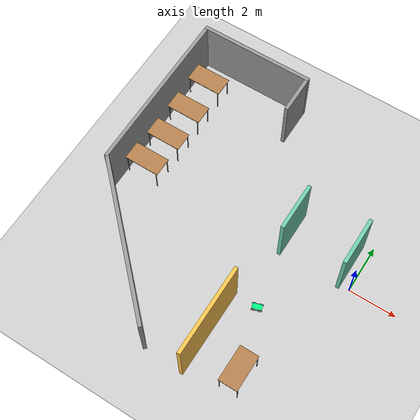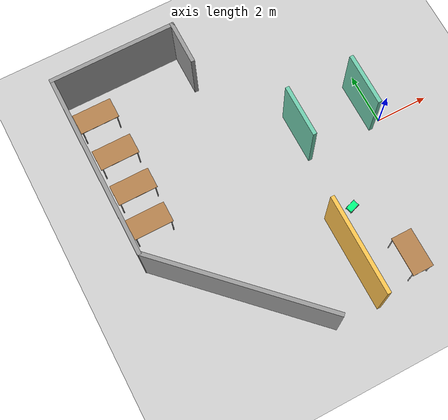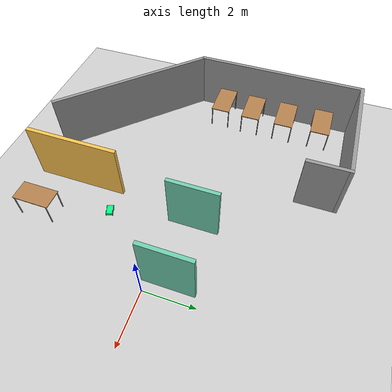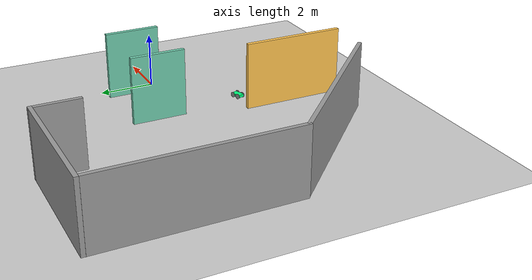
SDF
<sdf version="1.6">
 <world name="default">
  <model name="ground_plane">
   <static>1</static>
   <link name="link">
    <collision name="collision">
     <geometry><plane><normal>0 0 1</normal><size>100 100</size></plane></geometry>
     <surface><friction><ode><mu>100</mu><mu2>50</mu2></ode></friction></surface>
    </collision>
    <visual name="visual">
     <cast_shadows>0</cast_shadows>
     <geometry><plane><normal>0 0 1</normal><size>100 100</size></plane></geometry>
     <material>
      <script><uri>file://media/materials/scripts/gazebo.material</uri><name>Gazebo/Grey</name></script>
     </material>
    </visual>
   </link>
  </model>
  <model name="table">
   <static>1</static>
   <link name="link">
    <collision name="surface">
     <pose>0 0 1 0 -0 0</pose>
     <geometry><box><size>1.5 0.8 0.03</size></box></geometry>
     <surface><friction><ode><mu>0.6</mu><mu2>0.6</mu2></ode></friction></surface>
    </collision>
    <visual name="visual1">
     <pose>0 0 1 0 -0 0</pose>
     <geometry><box><size>1.5 0.8 0.03</size></box></geometry>
     <material>
      <script><uri>file://media/materials/scripts/gazebo.material</uri><name>Gazebo/Wood</name></script>
     </material>
    </visual>
    <collision name="front_left_leg">
     <pose>0.68 0.38 0.5 0 -0 0</pose>
     <geometry><cylinder><radius>0.02</radius><length>1</length></cylinder></geometry>
    </collision>
    <visual name="front_left_leg">
     <pose>0.68 0.38 0.5 0 -0 0</pose>
     <geometry><cylinder><radius>0.02</radius><length>1</length></cylinder></geometry>
     <material>
      <script><uri>file://media/materials/scripts/gazebo.material</uri><name>Gazebo/Grey</name></script>
     </material>
    </visual>
    <collision name="front_right_leg">
     <pose>0.68 -0.38 0.5 0 -0 0</pose>
     <geometry><cylinder><radius>0.02</radius><length>1</length></cylinder></geometry>
    </collision>
    <visual name="front_right_leg">
     <pose>0.68 -0.38 0.5 0 -0 0</pose>
     <geometry><cylinder><radius>0.02</radius><length>1</length></cylinder></geometry>
     <material>
      <script><uri>file://media/materials/scripts/gazebo.material</uri><name>Gazebo/Grey</name></script>
     </material>
    </visual>
    <collision name="back_right_leg">
     <pose>-0.68 -0.38 0.5 0 -0 0</pose>
     <geometry><cylinder><radius>0.02</radius><length>1</length></cylinder></geometry>
    </collision>
    <visual name="back_right_leg">
     <pose>-0.68 -0.38 0.5 0 -0 0</pose>
     <geometry><cylinder><radius>0.02</radius><length>1</length></cylinder></geometry>
     <material>
      <script><uri>file://media/materials/scripts/gazebo.material</uri><name>Gazebo/Grey</name></script>
     </material>
    </visual>
    <collision name="back_left_leg">
     <pose>-0.68 0.38 0.5 0 -0 0</pose>
     <geometry><cylinder><radius>0.02</radius><length>1</length></cylinder></geometry>
    </collision>
    <visual name="back_left_leg">
     <pose>-0.68 0.38 0.5 0 -0 0</pose>
     <geometry><cylinder><radius>0.02</radius><length>1</length></cylinder></geometry>
     <material>
      <script><uri>file://media/materials/scripts/gazebo.material</uri><name>Gazebo/Grey</name></script>
     </material>
    </visual>
   </link>
   <pose>-9.31337 4.66156 0 0 -0 0</pose>
  </model>
  <model name="table_clone">
   <static>1</static>
   <link name="link">
    <collision name="surface">
     <pose>0 0 1 0 -0 0</pose>
     <geometry><box><size>1.5 0.8 0.03</size></box></geometry>
     <surface><friction><ode><mu>0.6</mu><mu2>0.6</mu2></ode></friction></surface>
    </collision>
    <visual name="visual1">
     <pose>0 0 1 0 -0 0</pose>
     <geometry><box><size>1.5 0.8 0.03</size></box></geometry>
     <material>
      <script><uri>file://media/materials/scripts/gazebo.material</uri><name>Gazebo/Wood</name></script>
     </material>
    </visual>
    <collision name="front_left_leg">
     <pose>0.68 0.38 0.5 0 -0 0</pose>
     <geometry><cylinder><radius>0.02</radius><length>1</length></cylinder></geometry>
    </collision>
    <visual name="front_left_leg">
     <pose>0.68 0.38 0.5 0 -0 0</pose>
     <geometry><cylinder><radius>0.02</radius><length>1</length></cylinder></geometry>
     <material>
      <script><uri>file://media/materials/scripts/gazebo.material</uri><name>Gazebo/Grey</name></script>
     </material>
    </visual>
    <collision name="front_right_leg">
     <pose>0.68 -0.38 0.5 0 -0 0</pose>
     <geometry><cylinder><radius>0.02</radius><length>1</length></cylinder></geometry>
    </collision>
    <visual name="front_right_leg">
     <pose>0.68 -0.38 0.5 0 -0 0</pose>
     <geometry><cylinder><radius>0.02</radius><length>1</length></cylinder></geometry>
     <material>
      <script><uri>file://media/materials/scripts/gazebo.material</uri><name>Gazebo/Grey</name></script>
     </material>
    </visual>
    <collision name="back_right_leg">
     <pose>-0.68 -0.38 0.5 0 -0 0</pose>
     <geometry><cylinder><radius>0.02</radius><length>1</length></cylinder></geometry>
    </collision>
    <visual name="back_right_leg">
     <pose>-0.68 -0.38 0.5 0 -0 0</pose>
     <geometry><cylinder><radius>0.02</radius><length>1</length></cylinder></geometry>
     <material>
      <script><uri>file://media/materials/scripts/gazebo.material</uri><name>Gazebo/Grey</name></script>
     </material>
    </visual>
    <collision name="back_left_leg">
     <pose>-0.68 0.38 0.5 0 -0 0</pose>
     <geometry><cylinder><radius>0.02</radius><length>1</length></cylinder></geometry>
    </collision>
    <visual name="back_left_leg">
     <pose>-0.68 0.38 0.5 0 -0 0</pose>
     <geometry><cylinder><radius>0.02</radius><length>1</length></cylinder></geometry>
     <material>
      <script><uri>file://media/materials/scripts/gazebo.material</uri><name>Gazebo/Grey</name></script>
     </material>
    </visual>
   </link>
   <pose>-9.2685 3.06963 0 0 -0 0</pose>
  </model>
  <model name="table_clone_0">
   <static>1</static>
   <link name="link">
    <collision name="surface">
     <pose>0 0 1 0 -0 0</pose>
     <geometry><box><size>1.5 0.8 0.03</size></box></geometry>
     <surface><friction><ode><mu>0.6</mu><mu2>0.6</mu2></ode></friction></surface>
    </collision>
    <visual name="visual1">
     <pose>0 0 1 0 -0 0</pose>
     <geometry><box><size>1.5 0.8 0.03</size></box></geometry>
     <material>
      <script><uri>file://media/materials/scripts/gazebo.material</uri><name>Gazebo/Wood</name></script>
     </material>
    </visual>
    <collision name="front_left_leg">
     <pose>0.68 0.38 0.5 0 -0 0</pose>
     <geometry><cylinder><radius>0.02</radius><length>1</length></cylinder></geometry>
    </collision>
    <visual name="front_left_leg">
     <pose>0.68 0.38 0.5 0 -0 0</pose>
     <geometry><cylinder><radius>0.02</radius><length>1</length></cylinder></geometry>
     <material>
      <script><uri>file://media/materials/scripts/gazebo.material</uri><name>Gazebo/Grey</name></script>
     </material>
    </visual>
    <collision name="front_right_leg">
     <pose>0.68 -0.38 0.5 0 -0 0</pose>
     <geometry><cylinder><radius>0.02</radius><length>1</length></cylinder></geometry>
    </collision>
    <visual name="front_right_leg">
     <pose>0.68 -0.38 0.5 0 -0 0</pose>
     <geometry><cylinder><radius>0.02</radius><length>1</length></cylinder></geometry>
     <material>
      <script><uri>file://media/materials/scripts/gazebo.material</uri><name>Gazebo/Grey</name></script>
     </material>
    </visual>
    <collision name="back_right_leg">
     <pose>-0.68 -0.38 0.5 0 -0 0</pose>
     <geometry><cylinder><radius>0.02</radius><length>1</length></cylinder></geometry>
    </collision>
    <visual name="back_right_leg">
     <pose>-0.68 -0.38 0.5 0 -0 0</pose>
     <geometry><cylinder><radius>0.02</radius><length>1</length></cylinder></geometry>
     <material>
      <script><uri>file://media/materials/scripts/gazebo.material</uri><name>Gazebo/Grey</name></script>
     </material>
    </visual>
    <collision name="back_left_leg">
     <pose>-0.68 0.38 0.5 0 -0 0</pose>
     <geometry><cylinder><radius>0.02</radius><length>1</length></cylinder></geometry>
    </collision>
    <visual name="back_left_leg">
     <pose>-0.68 0.38 0.5 0 -0 0</pose>
     <geometry><cylinder><radius>0.02</radius><length>1</length></cylinder></geometry>
     <material>
      <script><uri>file://media/materials/scripts/gazebo.material</uri><name>Gazebo/Grey</name></script>
     </material>
    </visual>
   </link>
   <pose>-9.27088 1.58718 0 0 -0 0</pose>
  </model>
  <model name="table_clone_1">
   <static>1</static>
   <link name="link">
    <collision name="surface">
     <pose>0 0 1 0 -0 0</pose>
     <geometry><box><size>1.5 0.8 0.03</size></box></geometry>
     <surface><friction><ode><mu>0.6</mu><mu2>0.6</mu2></ode></friction></surface>
    </collision>
    <visual name="visual1">
     <pose>0 0 1 0 -0 0</pose>
     <geometry><box><size>1.5 0.8 0.03</size></box></geometry>
     <material>
      <script><uri>file://media/materials/scripts/gazebo.material</uri><name>Gazebo/Wood</name></script>
     </material>
    </visual>
    <collision name="front_left_leg">
     <pose>0.68 0.38 0.5 0 -0 0</pose>
     <geometry><cylinder><radius>0.02</radius><length>1</length></cylinder></geometry>
    </collision>
    <visual name="front_left_leg">
     <pose>0.68 0.38 0.5 0 -0 0</pose>
     <geometry><cylinder><radius>0.02</radius><length>1</length></cylinder></geometry>
     <material>
      <script><uri>file://media/materials/scripts/gazebo.material</uri><name>Gazebo/Grey</name></script>
     </material>
    </visual>
    <collision name="front_right_leg">
     <pose>0.68 -0.38 0.5 0 -0 0</pose>
     <geometry><cylinder><radius>0.02</radius><length>1</length></cylinder></geometry>
    </collision>
    <visual name="front_right_leg">
     <pose>0.68 -0.38 0.5 0 -0 0</pose>
     <geometry><cylinder><radius>0.02</radius><length>1</length></cylinder></geometry>
     <material>
      <script><uri>file://media/materials/scripts/gazebo.material</uri><name>Gazebo/Grey</name></script>
     </material>
    </visual>
    <collision name="back_right_leg">
     <pose>-0.68 -0.38 0.5 0 -0 0</pose>
     <geometry><cylinder><radius>0.02</radius><length>1</length></cylinder></geometry>
    </collision>
    <visual name="back_right_leg">
     <pose>-0.68 -0.38 0.5 0 -0 0</pose>
     <geometry><cylinder><radius>0.02</radius><length>1</length></cylinder></geometry>
     <material>
      <script><uri>file://media/materials/scripts/gazebo.material</uri><name>Gazebo/Grey</name></script>
     </material>
    </visual>
    <collision name="back_left_leg">
     <pose>-0.68 0.38 0.5 0 -0 0</pose>
     <geometry><cylinder><radius>0.02</radius><length>1</length></cylinder></geometry>
    </collision>
    <visual name="back_left_leg">
     <pose>-0.68 0.38 0.5 0 -0 0</pose>
     <geometry><cylinder><radius>0.02</radius><length>1</length></cylinder></geometry>
     <material>
      <script><uri>file://media/materials/scripts/gazebo.material</uri><name>Gazebo/Grey</name></script>
     </material>
    </visual>
   </link>
   <pose>-9.33321 0.190499 0 0 -0 0</pose>
  </model>
  <model name="table_clone_2_clone_0">
   <static>1</static>
   <link name="link">
    <collision name="surface">
     <pose>0 0 1 0 -0 0</pose>
     <geometry><box><size>1.5 0.8 0.03</size></box></geometry>
     <surface><friction><ode><mu>0.6</mu><mu2>0.6</mu2></ode></friction></surface>
    </collision>
    <visual name="visual1">
     <pose>0 0 1 0 -0 0</pose>
     <geometry><box><size>1.5 0.8 0.03</size></box></geometry>
     <material>
      <script><uri>file://media/materials/scripts/gazebo.material</uri><name>Gazebo/Wood</name></script>
     </material>
    </visual>
    <collision name="front_left_leg">
     <pose>0.68 0.38 0.5 0 -0 0</pose>
     <geometry><cylinder><radius>0.02</radius><length>1</length></cylinder></geometry>
    </collision>
    <visual name="front_left_leg">
     <pose>0.68 0.38 0.5 0 -0 0</pose>
     <geometry><cylinder><radius>0.02</radius><length>1</length></cylinder></geometry>
     <material>
      <script><uri>file://media/materials/scripts/gazebo.material</uri><name>Gazebo/Grey</name></script>
     </material>
    </visual>
    <collision name="front_right_leg">
     <pose>0.68 -0.38 0.5 0 -0 0</pose>
     <geometry><cylinder><radius>0.02</radius><length>1</length></cylinder></geometry>
    </collision>
    <visual name="front_right_leg">
     <pose>0.68 -0.38 0.5 0 -0 0</pose>
     <geometry><cylinder><radius>0.02</radius><length>1</length></cylinder></geometry>
     <material>
      <script><uri>file://media/materials/scripts/gazebo.material</uri><name>Gazebo/Grey</name></script>
     </material>
    </visual>
    <collision name="back_right_leg">
     <pose>-0.68 -0.38 0.5 0 -0 0</pose>
     <geometry><cylinder><radius>0.02</radius><length>1</length></cylinder></geometry>
    </collision>
    <visual name="back_right_leg">
     <pose>-0.68 -0.38 0.5 0 -0 0</pose>
     <geometry><cylinder><radius>0.02</radius><length>1</length></cylinder></geometry>
     <material>
      <script><uri>file://media/materials/scripts/gazebo.material</uri><name>Gazebo/Grey</name></script>
     </material>
    </visual>
    <collision name="back_left_leg">
     <pose>-0.68 0.38 0.5 0 -0 0</pose>
     <geometry><cylinder><radius>0.02</radius><length>1</length></cylinder></geometry>
    </collision>
    <visual name="back_left_leg">
     <pose>-0.68 0.38 0.5 0 -0 0</pose>
     <geometry><cylinder><radius>0.02</radius><length>1</length></cylinder></geometry>
     <material>
      <script><uri>file://media/materials/scripts/gazebo.material</uri><name>Gazebo/Grey</name></script>
     </material>
    </visual>
   </link>
   <pose>-1.80831 -5.06741 0 0 -0 1.5707</pose>
  </model>
  <model name="Building">
   <link name="Wall_133">
    <pose>-3.81217 -4.27997 0 0 0 -1.5708</pose>
    <visual name="Wall_133_Visual">
     <pose>0 0 1.25 0 -0 0</pose>
     <geometry><box><size>3.75 0.15 2.5</size></box></geometry>
     <material>
      <script><uri>file://media/materials/scripts/gazebo.material</uri><name>Gazebo/Grey</name></script>
      <ambient>1 0.764706 0.305882 1</ambient>
      <shader type="pixel"/>
      <diffuse>0.7 0.7 0.7 1</diffuse>
      <specular>0.01 0.01 0.01 1</specular>
      <emissive>0 0 0 1</emissive>
     </material>
     <meta><layer>0</layer></meta>
    </visual>
    <collision name="Wall_133_Collision">
     <pose>0 0 1.25 0 -0 0</pose>
     <geometry><box><size>3.75 0.15 2.5</size></box></geometry>
     <surface>
      <friction>
       <ode><mu>1</mu><mu2>1</mu2><fdir1>0 0 0</fdir1><slip1>0</slip1><slip2>0</slip2></ode>
       <torsional>
        <coefficient>1</coefficient>
        <patch_radius>0</patch_radius>
        <surface_radius>0</surface_radius>
        <use_patch_radius>1</use_patch_radius>
        <ode><slip>0</slip></ode>
       </torsional>
      </friction>
      <bounce><restitution_coefficient>0</restitution_coefficient><threshold>1e+06</threshold></bounce>
      <contact>
       <collide_without_contact>0</collide_without_contact>
       <collide_without_contact_bitmask>1</collide_without_contact_bitmask>
       <collide_bitmask>1</collide_bitmask>
       <ode>
        <soft_cfm>0</soft_cfm>
        <soft_erp>0.2</soft_erp>
        <kp>1e+13</kp>
        <kd>1</kd>
        <max_vel>0.01</max_vel>
        <min_depth>0</min_depth>
       </ode>
       <bullet>
        <split_impulse>1</split_impulse>
        <split_impulse_penetration_threshold>-0.01</split_impulse_penetration_threshold>
        <soft_cfm>0</soft_cfm>
        <soft_erp>0.2</soft_erp>
        <kp>1e+13</kp>
        <kd>1</kd>
       </bullet>
      </contact>
     </surface>
    </collision>
   </link>
   <link name="Wall_18">
    <pose>-5.67515 5.0855 0 0 -0 1.5708</pose>
    <visual name="Wall_18_Visual">
     <pose>0 0 1.25 0 -0 0</pose>
     <geometry><box><size>1.719 0.15 2.5</size></box></geometry>
     <material>
      <script><uri>file://media/materials/scripts/gazebo.material</uri><name>Gazebo/Grey</name></script>
      <ambient>1 1 1 1</ambient>
      <shader type="pixel"/>
      <diffuse>0.7 0.7 0.7 1</diffuse>
      <specular>0.01 0.01 0.01 1</specular>
      <emissive>0 0 0 1</emissive>
     </material>
     <meta><layer>0</layer></meta>
    </visual>
    <collision name="Wall_18_Collision">
     <pose>0 0 1.25 0 -0 0</pose>
     <geometry><box><size>1.719 0.15 2.5</size></box></geometry>
     <surface>
      <friction>
       <ode><mu>1</mu><mu2>1</mu2><fdir1>0 0 0</fdir1><slip1>0</slip1><slip2>0</slip2></ode>
       <torsional>
        <coefficient>1</coefficient>
        <patch_radius>0</patch_radius>
        <surface_radius>0</surface_radius>
        <use_patch_radius>1</use_patch_radius>
        <ode><slip>0</slip></ode>
       </torsional>
      </friction>
      <bounce><restitution_coefficient>0</restitution_coefficient><threshold>1e+06</threshold></bounce>
      <contact>
       <collide_without_contact>0</collide_without_contact>
       <collide_without_contact_bitmask>1</collide_without_contact_bitmask>
       <collide_bitmask>1</collide_bitmask>
       <ode>
        <soft_cfm>0</soft_cfm>
        <soft_erp>0.2</soft_erp>
        <kp>1e+13</kp>
        <kd>1</kd>
        <max_vel>0.01</max_vel>
        <min_depth>0</min_depth>
       </ode>
       <bullet>
        <split_impulse>1</split_impulse>
        <split_impulse_penetration_threshold>-0.01</split_impulse_penetration_threshold>
        <soft_cfm>0</soft_cfm>
        <soft_erp>0.2</soft_erp>
        <kp>1e+13</kp>
        <kd>1</kd>
       </bullet>
      </contact>
     </surface>
    </collision>
   </link>
   <link name="Wall_19">
    <pose>-8.02415 5.87 0 0 -0 3.14159</pose>
    <visual name="Wall_19_Visual">
     <pose>0 0 1.25 0 -0 0</pose>
     <geometry><box><size>4.848 0.15 2.5</size></box></geometry>
     <material>
      <script><uri>file://media/materials/scripts/gazebo.material</uri><name>Gazebo/Grey</name></script>
      <ambient>1 1 1 1</ambient>
      <shader type="pixel"/>
      <diffuse>0.7 0.7 0.7 1</diffuse>
      <specular>0.01 0.01 0.01 1</specular>
      <emissive>0 0 0 1</emissive>
     </material>
     <meta><layer>0</layer></meta>
    </visual>
    <collision name="Wall_19_Collision">
     <pose>0 0 1.25 0 -0 0</pose>
     <geometry><box><size>4.848 0.15 2.5</size></box></geometry>
     <surface>
      <friction>
       <ode><mu>1</mu><mu2>1</mu2><fdir1>0 0 0</fdir1><slip1>0</slip1><slip2>0</slip2></ode>
       <torsional>
        <coefficient>1</coefficient>
        <patch_radius>0</patch_radius>
        <surface_radius>0</surface_radius>
        <use_patch_radius>1</use_patch_radius>
        <ode><slip>0</slip></ode>
       </torsional>
      </friction>
      <bounce><restitution_coefficient>0</restitution_coefficient><threshold>1e+06</threshold></bounce>
      <contact>
       <collide_without_contact>0</collide_without_contact>
       <collide_without_contact_bitmask>1</collide_without_contact_bitmask>
       <collide_bitmask>1</collide_bitmask>
       <ode>
        <soft_cfm>0</soft_cfm>
        <soft_erp>0.2</soft_erp>
        <kp>1e+13</kp>
        <kd>1</kd>
        <max_vel>0.01</max_vel>
        <min_depth>0</min_depth>
       </ode>
       <bullet>
        <split_impulse>1</split_impulse>
        <split_impulse_penetration_threshold>-0.01</split_impulse_penetration_threshold>
        <soft_cfm>0</soft_cfm>
        <soft_erp>0.2</soft_erp>
        <kp>1e+13</kp>
        <kd>1</kd>
       </bullet>
      </contact>
     </surface>
    </collision>
   </link>
   <link name="Wall_46">
    <pose>-3.23215 0.802004 0 0 -0 1.5708</pose>
    <visual name="Wall_46_Visual">
     <pose>0 0 1.25 0 -0 0</pose>
     <geometry><box><size>2 0.15 2.5</size></box></geometry>
     <material>
      <script><uri>file://media/materials/scripts/gazebo.material</uri><name>Gazebo/Grey</name></script>
      <ambient>0.435294 0.796078 0.67451 1</ambient>
      <shader type="pixel"/>
      <diffuse>0.7 0.7 0.7 1</diffuse>
      <specular>0.01 0.01 0.01 1</specular>
      <emissive>0 0 0 1</emissive>
     </material>
     <meta><layer>0</layer></meta>
    </visual>
    <collision name="Wall_46_Collision">
     <pose>0 0 1.25 0 -0 0</pose>
     <geometry><box><size>2 0.15 2.5</size></box></geometry>
     <surface>
      <friction>
       <ode><mu>1</mu><mu2>1</mu2><fdir1>0 0 0</fdir1><slip1>0</slip1><slip2>0</slip2></ode>
       <torsional>
        <coefficient>1</coefficient>
        <patch_radius>0</patch_radius>
        <surface_radius>0</surface_radius>
        <use_patch_radius>1</use_patch_radius>
        <ode><slip>0</slip></ode>
       </torsional>
      </friction>
      <bounce><restitution_coefficient>0</restitution_coefficient><threshold>1e+06</threshold></bounce>
      <contact>
       <collide_without_contact>0</collide_without_contact>
       <collide_without_contact_bitmask>1</collide_without_contact_bitmask>
       <collide_bitmask>1</collide_bitmask>
       <ode>
        <soft_cfm>0</soft_cfm>
        <soft_erp>0.2</soft_erp>
        <kp>1e+13</kp>
        <kd>1</kd>
        <max_vel>0.01</max_vel>
        <min_depth>0</min_depth>
       </ode>
       <bullet>
        <split_impulse>1</split_impulse>
        <split_impulse_penetration_threshold>-0.01</split_impulse_penetration_threshold>
        <soft_cfm>0</soft_cfm>
        <soft_erp>0.2</soft_erp>
        <kp>1e+13</kp>
        <kd>1</kd>
       </bullet>
      </contact>
     </surface>
    </collision>
   </link>
   <link name="Wall_48">
    <pose>-0.652154 0.802004 0 0 -0 1.5708</pose>
    <visual name="Wall_48_Visual">
     <pose>0 0 1.25 0 -0 0</pose>
     <geometry><box><size>2 0.15 2.5</size></box></geometry>
     <material>
      <script><uri>file://media/materials/scripts/gazebo.material</uri><name>Gazebo/Grey</name></script>
      <ambient>0.435294 0.796078 0.67451 1</ambient>
      <shader type="pixel"/>
      <diffuse>0.7 0.7 0.7 1</diffuse>
      <specular>0.01 0.01 0.01 1</specular>
      <emissive>0 0 0 1</emissive>
     </material>
     <meta><layer>0</layer></meta>
    </visual>
    <collision name="Wall_48_Collision">
     <pose>0 0 1.25 0 -0 0</pose>
     <geometry><box><size>2 0.15 2.5</size></box></geometry>
     <surface>
      <friction>
       <ode><mu>1</mu><mu2>1</mu2><fdir1>0 0 0</fdir1><slip1>0</slip1><slip2>0</slip2></ode>
       <torsional>
        <coefficient>1</coefficient>
        <patch_radius>0</patch_radius>
        <surface_radius>0</surface_radius>
        <use_patch_radius>1</use_patch_radius>
        <ode><slip>0</slip></ode>
       </torsional>
      </friction>
      <bounce><restitution_coefficient>0</restitution_coefficient><threshold>1e+06</threshold></bounce>
      <contact>
       <collide_without_contact>0</collide_without_contact>
       <collide_without_contact_bitmask>1</collide_without_contact_bitmask>
       <collide_bitmask>1</collide_bitmask>
       <ode>
        <soft_cfm>0</soft_cfm>
        <soft_erp>0.2</soft_erp>
        <kp>1e+13</kp>
        <kd>1</kd>
        <max_vel>0.01</max_vel>
        <min_depth>0</min_depth>
       </ode>
       <bullet>
        <split_impulse>1</split_impulse>
        <split_impulse_penetration_threshold>-0.01</split_impulse_penetration_threshold>
        <soft_cfm>0</soft_cfm>
        <soft_erp>0.2</soft_erp>
        <kp>1e+13</kp>
        <kd>1</kd>
       </bullet>
      </contact>
     </surface>
    </collision>
   </link>
   <link name="Wall_6">
    <pose>-10.3752 2.29528 0 0 0 -1.5708</pose>
    <visual name="Wall_6_Visual">
     <pose>0 0 1.25 0 -0 0</pose>
     <geometry><box><size>7 0.15 2.5</size></box></geometry>
     <material>
      <script><uri>file://media/materials/scripts/gazebo.material</uri><name>Gazebo/Grey</name></script>
      <ambient>1 1 1 1</ambient>
      <shader type="pixel"/>
      <diffuse>0.7 0.7 0.7 1</diffuse>
      <specular>0.01 0.01 0.01 1</specular>
      <emissive>0 0 0 1</emissive>
     </material>
     <meta><layer>0</layer></meta>
    </visual>
    <collision name="Wall_6_Collision">
     <pose>0 0 1.25 0 -0 0</pose>
     <geometry><box><size>7 0.15 2.5</size></box></geometry>
     <surface>
      <friction>
       <ode><mu>1</mu><mu2>1</mu2><fdir1>0 0 0</fdir1><slip1>0</slip1><slip2>0</slip2></ode>
       <torsional>
        <coefficient>1</coefficient>
        <patch_radius>0</patch_radius>
        <surface_radius>0</surface_radius>
        <use_patch_radius>1</use_patch_radius>
        <ode><slip>0</slip></ode>
       </torsional>
      </friction>
      <bounce><restitution_coefficient>0</restitution_coefficient><threshold>1e+06</threshold></bounce>
      <contact>
       <collide_without_contact>0</collide_without_contact>
       <collide_without_contact_bitmask>1</collide_without_contact_bitmask>
       <collide_bitmask>1</collide_bitmask>
       <ode>
        <soft_cfm>0</soft_cfm>
        <soft_erp>0.2</soft_erp>
        <kp>1e+13</kp>
        <kd>1</kd>
        <max_vel>0.01</max_vel>
        <min_depth>0</min_depth>
       </ode>
       <bullet>
        <split_impulse>1</split_impulse>
        <split_impulse_penetration_threshold>-0.01</split_impulse_penetration_threshold>
        <soft_cfm>0</soft_cfm>
        <soft_erp>0.2</soft_erp>
        <kp>1e+13</kp>
        <kd>1</kd>
       </bullet>
      </contact>
     </surface>
    </collision>
   </link>
   <link name="Wall_7">
    <pose>-7.92 -3.6 0 0 0 -0.785</pose>
    <inertial>
     <mass>1</mass>
     <inertia><ixx>1</ixx><ixy>0</ixy><ixz>0</ixz><iyy>1</iyy><iyz>0</iyz><izz>1</izz></inertia>
    </inertial>
    <visual name="Wall_7_Visual">
     <pose>0 0 1.25 0 -0 0</pose>
     <geometry><box><size>7 0.15 2.5</size></box></geometry>
     <material>
      <script><uri>file://media/materials/scripts/gazebo.material</uri><name>Gazebo/Grey</name></script>
      <ambient>1 1 1 1</ambient>
      <shader type="pixel"><normal_map>__default__</normal_map></shader>
      <diffuse>0.7 0.7 0.7 1</diffuse>
      <specular>0.01 0.01 0.01 1</specular>
      <emissive>0 0 0 1</emissive>
     </material>
     <meta><layer>0</layer></meta>
    </visual>
    <collision name="Wall_7_Collision">
     <pose>0 0 1.25 0 -0 0</pose>
     <geometry><box><size>7 0.15 2.5</size></box></geometry>
     <surface>
      <friction>
       <ode><mu>1</mu><mu2>1</mu2><fdir1>0 0 0</fdir1><slip1>0</slip1><slip2>0</slip2></ode>
       <torsional>
        <coefficient>1</coefficient>
        <patch_radius>0</patch_radius>
        <surface_radius>0</surface_radius>
        <use_patch_radius>1</use_patch_radius>
        <ode><slip>0</slip></ode>
       </torsional>
      </friction>
      <bounce><restitution_coefficient>0</restitution_coefficient><threshold>1e+06</threshold></bounce>
      <contact>
       <collide_without_contact>0</collide_without_contact>
       <collide_without_contact_bitmask>1</collide_without_contact_bitmask>
       <collide_bitmask>1</collide_bitmask>
       <ode>
        <soft_cfm>0</soft_cfm>
        <soft_erp>0.2</soft_erp>
        <kp>1e+13</kp>
        <kd>1</kd>
        <max_vel>0.01</max_vel>
        <min_depth>0</min_depth>
       </ode>
       <bullet>
        <split_impulse>1</split_impulse>
        <split_impulse_penetration_threshold>-0.01</split_impulse_penetration_threshold>
        <soft_cfm>0</soft_cfm>
        <soft_erp>0.2</soft_erp>
        <kp>1e+13</kp>
        <kd>1</kd>
       </bullet>
      </contact>
     </surface>
    </collision>
   </link>
   <static>1</static>
   <pose>0.2098 0.03522 0 0 -0 0</pose>
  </model>
  <model name="Diff_Drive_Robot_clone_0">
   <link name="link_1">
    <pose>0 0 0.025 0 -0 0</pose>
    <inertial>
     <mass>1</mass>
     <inertia>
      <ixx>0.166667</ixx>
      <ixy>0</ixy>
      <ixz>0</ixz>
      <iyy>0.166667</iyy>
      <iyz>0</iyz>
      <izz>0.166667</izz>
     </inertia>
    </inertial>
    <visual name="visual">
     <geometry><box><size>0.4 0.25 0.1</size></box></geometry>
     <material>
      <lighting>1</lighting>
      <script><uri>file://media/materials/scripts/gazebo.material</uri><name>Gazebo/Grey</name></script>
      <shader type="pixel"><normal_map>__default__</normal_map></shader>
      <ambient>0 1 0.5 1</ambient>
      <diffuse>0.7 0.7 0.7 1</diffuse>
      <specular>0.01 0.01 0.01 1</specular>
      <emissive>0 0 0 1</emissive>
     </material>
    </visual>
    <collision name="collision">
     <geometry><box><size>0.4 0.25 0.1</size></box></geometry>
     <surface>
      <friction>
       <ode><mu>1</mu><mu2>1</mu2><fdir1>0 0 0</fdir1><slip1>0</slip1><slip2>0</slip2></ode>
       <torsional>
        <coefficient>1</coefficient>
        <patch_radius>0</patch_radius>
        <surface_radius>0</surface_radius>
        <use_patch_radius>1</use_patch_radius>
        <ode><slip>0</slip></ode>
       </torsional>
      </friction>
      <bounce><restitution_coefficient>0</restitution_coefficient><threshold>1e+06</threshold></bounce>
      <contact>
       <collide_without_contact>0</collide_without_contact>
       <collide_without_contact_bitmask>1</collide_without_contact_bitmask>
       <collide_bitmask>1</collide_bitmask>
       <ode>
        <soft_cfm>0</soft_cfm>
        <soft_erp>0.2</soft_erp>
        <kp>1e+13</kp>
        <kd>1</kd>
        <max_vel>0.01</max_vel>
        <min_depth>0</min_depth>
       </ode>
       <bullet>
        <split_impulse>1</split_impulse>
        <split_impulse_penetration_threshold>-0.01</split_impulse_penetration_threshold>
        <soft_cfm>0</soft_cfm>
        <soft_erp>0.2</soft_erp>
        <kp>1e+13</kp>
        <kd>1</kd>
       </bullet>
      </contact>
     </surface>
    </collision>
   </link>
   <link name="link_2">
    <pose>0.125 0.125 0.025 1.5707 -0 0</pose>
    <inertial>
     <mass>1</mass>
     <inertia><ixx>0.145833</ixx><ixy>0</ixy><ixz>0</ixz><iyy>0.145833</iyy><iyz>0</iyz><izz>0.125</izz></inertia>
    </inertial>
    <visual name="visual">
     <geometry><cylinder><radius>0.1</radius><length>0.01</length></cylinder></geometry>
     <material>
      <lighting>1</lighting>
      <script><uri>file://media/materials/scripts/gazebo.material</uri><name>Gazebo/Grey</name></script>
      <shader type="pixel"><normal_map>__default__</normal_map></shader>
      <ambient>0.3 0.3 0.3 1</ambient>
      <diffuse>0.7 0.7 0.7 1</diffuse>
      <specular>0.01 0.01 0.01 1</specular>
      <emissive>0 0 0 1</emissive>
     </material>
    </visual>
    <collision name="collision">
     <geometry><cylinder><radius>0.1</radius><length>0.01</length></cylinder></geometry>
     <surface>
      <friction>
       <ode><mu>1</mu><mu2>1</mu2><fdir1>0 0 0</fdir1><slip1>0</slip1><slip2>0</slip2></ode>
       <torsional>
        <coefficient>1</coefficient>
        <patch_radius>0</patch_radius>
        <surface_radius>0</surface_radius>
        <use_patch_radius>1</use_patch_radius>
        <ode><slip>0</slip></ode>
       </torsional>
      </friction>
      <bounce><restitution_coefficient>0</restitution_coefficient><threshold>1e+06</threshold></bounce>
      <contact>
       <collide_without_contact>0</collide_without_contact>
       <collide_without_contact_bitmask>1</collide_without_contact_bitmask>
       <collide_bitmask>1</collide_bitmask>
       <ode>
        <soft_cfm>0</soft_cfm>
        <soft_erp>0.2</soft_erp>
        <kp>1e+13</kp>
        <kd>1</kd>
        <max_vel>0.01</max_vel>
        <min_depth>0</min_depth>
       </ode>
       <bullet>
        <split_impulse>1</split_impulse>
        <split_impulse_penetration_threshold>-0.01</split_impulse_penetration_threshold>
        <soft_cfm>0</soft_cfm>
        <soft_erp>0.2</soft_erp>
        <kp>1e+13</kp>
        <kd>1</kd>
       </bullet>
      </contact>
     </surface>
    </collision>
   </link>
   <link name="link_2_clone">
    <pose>0.125 -0.125 0.025 1.5707 -0 0</pose>
    <inertial>
     <mass>1</mass>
     <inertia><ixx>0.145833</ixx><ixy>0</ixy><ixz>0</ixz><iyy>0.145833</iyy><iyz>0</iyz><izz>0.125</izz></inertia>
    </inertial>
    <visual name="visual">
     <geometry><cylinder><radius>0.1</radius><length>0.01</length></cylinder></geometry>
     <material>
      <lighting>1</lighting>
      <script><uri>file://media/materials/scripts/gazebo.material</uri><name>Gazebo/Grey</name></script>
      <shader type="pixel"><normal_map>__default__</normal_map></shader>
      <ambient>0.3 0.3 0.3 1</ambient>
      <diffuse>0.7 0.7 0.7 1</diffuse>
      <specular>0.01 0.01 0.01 1</specular>
      <emissive>0 0 0 1</emissive>
     </material>
    </visual>
    <collision name="collision">
     <geometry><cylinder><radius>0.1</radius><length>0.01</length></cylinder></geometry>
     <surface>
      <friction>
       <ode><mu>1</mu><mu2>1</mu2><fdir1>0 0 0</fdir1><slip1>0</slip1><slip2>0</slip2></ode>
       <torsional>
        <coefficient>1</coefficient>
        <patch_radius>0</patch_radius>
        <surface_radius>0</surface_radius>
        <use_patch_radius>1</use_patch_radius>
        <ode><slip>0</slip></ode>
       </torsional>
      </friction>
      <bounce><restitution_coefficient>0</restitution_coefficient><threshold>1e+06</threshold></bounce>
      <contact>
       <collide_without_contact>0</collide_without_contact>
       <collide_without_contact_bitmask>1</collide_without_contact_bitmask>
       <collide_bitmask>1</collide_bitmask>
       <ode>
        <soft_cfm>0</soft_cfm>
        <soft_erp>0.2</soft_erp>
        <kp>1e+13</kp>
        <kd>1</kd>
        <max_vel>0.01</max_vel>
        <min_depth>0</min_depth>
       </ode>
       <bullet>
        <split_impulse>1</split_impulse>
        <split_impulse_penetration_threshold>-0.01</split_impulse_penetration_threshold>
        <soft_cfm>0</soft_cfm>
        <soft_erp>0.2</soft_erp>
        <kp>1e+13</kp>
        <kd>1</kd>
       </bullet>
      </contact>
     </surface>
    </collision>
   </link>
   <link name="link_2_clone_0">
    <pose>-0.125 0.125 0.025 1.5707 -0 0</pose>
    <inertial>
     <mass>1</mass>
     <inertia><ixx>0.145833</ixx><ixy>0</ixy><ixz>0</ixz><iyy>0.145833</iyy><iyz>0</iyz><izz>0.125</izz></inertia>
    </inertial>
    <visual name="visual">
     <geometry><cylinder><radius>0.1</radius><length>0.01</length></cylinder></geometry>
     <material>
      <lighting>1</lighting>
      <script><uri>file://media/materials/scripts/gazebo.material</uri><name>Gazebo/Grey</name></script>
      <shader type="pixel"><normal_map>__default__</normal_map></shader>
      <ambient>0.3 0.3 0.3 1</ambient>
      <diffuse>0.7 0.7 0.7 1</diffuse>
      <specular>0.01 0.01 0.01 1</specular>
      <emissive>0 0 0 1</emissive>
     </material>
    </visual>
    <collision name="collision">
     <geometry><cylinder><radius>0.1</radius><length>0.01</length></cylinder></geometry>
     <surface>
      <friction>
       <ode><mu>1</mu><mu2>1</mu2><fdir1>0 0 0</fdir1><slip1>0</slip1><slip2>0</slip2></ode>
       <torsional>
        <coefficient>1</coefficient>
        <patch_radius>0</patch_radius>
        <surface_radius>0</surface_radius>
        <use_patch_radius>1</use_patch_radius>
        <ode><slip>0</slip></ode>
       </torsional>
      </friction>
      <bounce><restitution_coefficient>0</restitution_coefficient><threshold>1e+06</threshold></bounce>
      <contact>
       <collide_without_contact>0</collide_without_contact>
       <collide_without_contact_bitmask>1</collide_without_contact_bitmask>
       <collide_bitmask>1</collide_bitmask>
       <ode>
        <soft_cfm>0</soft_cfm>
        <soft_erp>0.2</soft_erp>
        <kp>1e+13</kp>
        <kd>1</kd>
        <max_vel>0.01</max_vel>
        <min_depth>0</min_depth>
       </ode>
       <bullet>
        <split_impulse>1</split_impulse>
        <split_impulse_penetration_threshold>-0.01</split_impulse_penetration_threshold>
        <soft_cfm>0</soft_cfm>
        <soft_erp>0.2</soft_erp>
        <kp>1e+13</kp>
        <kd>1</kd>
       </bullet>
      </contact>
     </surface>
    </collision>
   </link>
   <link name="link_2_clone_1">
    <pose>-0.125 -0.125 0.025 1.5707 -0 0</pose>
    <inertial>
     <mass>1</mass>
     <inertia><ixx>0.145833</ixx><ixy>0</ixy><ixz>0</ixz><iyy>0.145833</iyy><iyz>0</iyz><izz>0.125</izz></inertia>
    </inertial>
    <visual name="visual">
     <geometry><cylinder><radius>0.1</radius><length>0.01</length></cylinder></geometry>
     <material>
      <lighting>1</lighting>
      <script><uri>file://media/materials/scripts/gazebo.material</uri><name>Gazebo/Grey</name></script>
      <shader type="pixel"><normal_map>__default__</normal_map></shader>
      <ambient>0.3 0.3 0.3 1</ambient>
      <diffuse>0.7 0.7 0.7 1</diffuse>
      <specular>0.01 0.01 0.01 1</specular>
      <emissive>0 0 0 1</emissive>
     </material>
    </visual>
    <collision name="collision">
     <geometry><cylinder><radius>0.1</radius><length>0.01</length></cylinder></geometry>
     <surface>
      <friction>
       <ode><mu>1</mu><mu2>1</mu2><fdir1>0 0 0</fdir1><slip1>0</slip1><slip2>0</slip2></ode>
       <torsional>
        <coefficient>1</coefficient>
        <patch_radius>0</patch_radius>
        <surface_radius>0</surface_radius>
        <use_patch_radius>1</use_patch_radius>
        <ode><slip>0</slip></ode>
       </torsional>
      </friction>
      <bounce><restitution_coefficient>0</restitution_coefficient><threshold>1e+06</threshold></bounce>
      <contact>
       <collide_without_contact>0</collide_without_contact>
       <collide_without_contact_bitmask>1</collide_without_contact_bitmask>
       <collide_bitmask>1</collide_bitmask>
       <ode>
        <soft_cfm>0</soft_cfm>
        <soft_erp>0.2</soft_erp>
        <kp>1e+13</kp>
        <kd>1</kd>
        <max_vel>0.01</max_vel>
        <min_depth>0</min_depth>
       </ode>
       <bullet>
        <split_impulse>1</split_impulse>
        <split_impulse_penetration_threshold>-0.01</split_impulse_penetration_threshold>
        <soft_cfm>0</soft_cfm>
        <soft_erp>0.2</soft_erp>
        <kp>1e+13</kp>
        <kd>1</kd>
       </bullet>
      </contact>
     </surface>
    </collision>
   </link>
   <joint name="link_1_JOINT_1" type="revolute">
    <parent>link_1</parent>
    <child>link_2</child>
    <axis>
     <xyz>0 0 1</xyz>
     <use_parent_model_frame>0</use_parent_model_frame>
     <limit>
      <lower>-1.79769e+308</lower>
      <upper>1.79769e+308</upper>
      <effort>-1</effort>
      <velocity>-1</velocity>
     </limit>
     <dynamics>
      <spring_reference>0</spring_reference>
      <spring_stiffness>0</spring_stiffness>
      <damping>0</damping>
      <friction>0</friction>
     </dynamics>
     <use_parent_model_frame>1</use_parent_model_frame>
    </axis>
    <physics>
     <ode><limit><cfm>0</cfm><erp>0.2</erp></limit><suspension><cfm>0</cfm><erp>0.2</erp></suspension></ode>
    </physics>
   </joint>
   <joint name="link_1_JOINT_2" type="revolute">
    <parent>link_1</parent>
    <child>link_2_clone</child>
    <axis>
     <xyz>0 0 1</xyz>
     <use_parent_model_frame>0</use_parent_model_frame>
     <limit>
      <lower>-1.79769e+308</lower>
      <upper>1.79769e+308</upper>
      <effort>-1</effort>
      <velocity>-1</velocity>
     </limit>
     <dynamics>
      <spring_reference>0</spring_reference>
      <spring_stiffness>0</spring_stiffness>
      <damping>0</damping>
      <friction>0</friction>
     </dynamics>
     <use_parent_model_frame>1</use_parent_model_frame>
    </axis>
    <physics>
     <ode><limit><cfm>0</cfm><erp>0.2</erp></limit><suspension><cfm>0</cfm><erp>0.2</erp></suspension></ode>
    </physics>
   </joint>
   <joint name="link_1_JOINT_3" type="revolute">
    <parent>link_1</parent>
    <child>link_2_clone_0</child>
    <axis>
     <xyz>0 0 1</xyz>
     <use_parent_model_frame>0</use_parent_model_frame>
     <limit>
      <lower>-1.79769e+308</lower>
      <upper>1.79769e+308</upper>
      <effort>-1</effort>
      <velocity>-1</velocity>
     </limit>
     <dynamics>
      <spring_reference>0</spring_reference>
      <spring_stiffness>0</spring_stiffness>
      <damping>0</damping>
      <friction>0</friction>
     </dynamics>
     <use_parent_model_frame>1</use_parent_model_frame>
    </axis>
    <physics>
     <ode><limit><cfm>0</cfm><erp>0.2</erp></limit><suspension><cfm>0</cfm><erp>0.2</erp></suspension></ode>
    </physics>
   </joint>
   <joint name="link_1_JOINT_4" type="revolute">
    <parent>link_1</parent>
    <child>link_2_clone_1</child>
    <axis>
     <xyz>1 0 0</xyz>
     <use_parent_model_frame>0</use_parent_model_frame>
     <limit>
      <lower>-1.79769e+308</lower>
      <upper>1.79769e+308</upper>
      <effort>-1</effort>
      <velocity>-1</velocity>
     </limit>
     <dynamics>
      <spring_reference>0</spring_reference>
      <spring_stiffness>0</spring_stiffness>
      <damping>0</damping>
      <friction>0</friction>
     </dynamics>
     <use_parent_model_frame>1</use_parent_model_frame>
    </axis>
    <physics>
     <ode><limit><cfm>0</cfm><erp>0.2</erp></limit><suspension><cfm>0</cfm><erp>0.2</erp></suspension></ode>
    </physics>
   </joint>
   <static>0</static>
   <pose>-2.57731 -2.48024 0.075 5e-06 -0 0.319095</pose>
  </model>
 </world>
</sdf>
